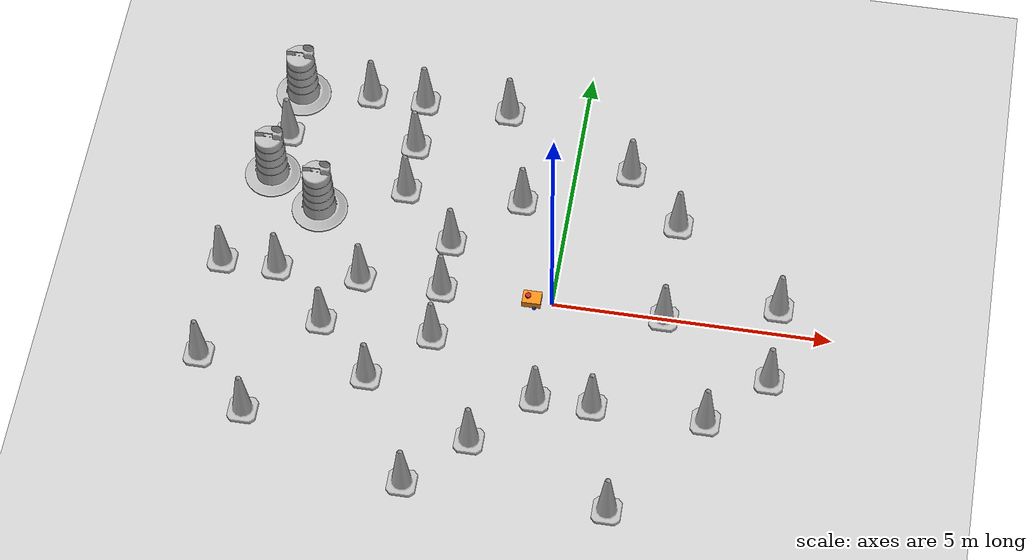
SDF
<sdf version="1.7">
 <world name="default">
  <light name="sun" type="directional">
   <pose>0 0 10 0 -0 0</pose>
   <diffuse>0.8 0.8 0.8 1</diffuse>
   <specular>0.2 0.2 0.2 1</specular>
   <attenuation>
    <range>1000</range>
    <constant>0.9</constant>
    <linear>0.01</linear>
    <quadratic>0.001</quadratic>
   </attenuation>
   <direction>-0.5 0.1 -0.9</direction>
   <spot><inner_angle>0</inner_angle><outer_angle>0</outer_angle><falloff>0</falloff></spot>
  </light>
  <model name="ground_plane">
   <static>1</static>
   <link name="link">
    <collision name="collision">
     <geometry><plane><normal>0 0 1</normal><size>100 100</size></plane></geometry>
     <surface>
      <contact><collide_bitmask>65535</collide_bitmask></contact>
      <friction><ode><mu>100</mu><mu2>50</mu2></ode></friction>
     </surface>
    </collision>
    <visual name="visual">
     <cast_shadows>0</cast_shadows>
     <geometry><plane><normal>0 0 1</normal><size>100 100</size></plane></geometry>
     <material>
      <script><uri>file://media/materials/scripts/gazebo.material</uri><name>Gazebo/Grey</name></script>
     </material>
    </visual>
   </link>
  </model>
  <gravity>0 0 -9.8</gravity>
  <magnetic_field>6e-06 2.3e-05 -4.2e-05</magnetic_field>
  <atmosphere type="adiabatic"/>
  <physics type="ode">
   <max_step_size>0.001</max_step_size>
   <real_time_factor>1</real_time_factor>
   <real_time_update_rate>1000</real_time_update_rate>
  </physics>
  <scene><ambient>0.4 0.4 0.4 1</ambient><background>0.7 0.7 0.7 1</background><shadows>1</shadows></scene>
  <audio><device>default</device></audio>
  <spherical_coordinates>
   <surface_model>EARTH_WGS84</surface_model>
   <latitude_deg>0</latitude_deg>
   <longitude_deg>0</longitude_deg>
   <elevation>0</elevation>
   <heading_deg>0</heading_deg>
  </spherical_coordinates>
  <model name="my_bot">
   <link name="base_link">
    <inertial>
     <pose>-0.071082 0 0.075033 0 -0 0</pose>
     <mass>0.61</mass>
     <inertia>
      <ixx>0.00482981</ixx>
      <ixy>0</ixy>
      <ixz>0.000516598</ixz>
      <iyy>0.00702444</iyy>
      <iyz>0</iyz>
      <izz>0.0081721</izz>
     </inertia>
    </inertial>
    <collision name="base_link_fixed_joint_lump__chassis_collision">
     <pose>-0.0585 0 0.059 0 -0 0</pose>
     <geometry><box><size>0.335 0.265 0.138</size></box></geometry>
    </collision>
    <collision name="base_link_fixed_joint_lump__caster_wheel_collision_1">
     <pose>-0.151 0 -0.023 0 -0 0</pose>
     <geometry><sphere><radius>0.01</radius></sphere></geometry>
     <surface><friction><ode><mu>0.001</mu><mu2>0.001</mu2></ode></friction></surface>
    </collision>
    <collision name="base_link_fixed_joint_lump__laser_frame_collision_2">
     <pose>-0.126 0 0.165 0 -0 0</pose>
     <geometry><cylinder><length>0.04</length><radius>0.05</radius></cylinder></geometry>
    </collision>
    <visual name="base_link_fixed_joint_lump__chassis_visual">
     <pose>-0.0585 0 0.059 0 -0 0</pose>
     <geometry><box><size>0.335 0.265 0.138</size></box></geometry>
     <material>
      <script><name>Gazebo/Orange</name><uri>file://media/materials/scripts/gazebo.material</uri></script>
     </material>
    </visual>
    <visual name="base_link_fixed_joint_lump__camera_link_visual_1">
     <pose>0.079 0 0.07 0 -0 0</pose>
     <geometry><box><size>0.01 0.03 0.03</size></box></geometry>
     <material>
      <script><name>Gazebo/Red</name><uri>file://media/materials/scripts/gazebo.material</uri></script>
     </material>
    </visual>
    <visual name="base_link_fixed_joint_lump__caster_wheel_visual_2">
     <pose>-0.151 0 -0.023 0 -0 0</pose>
     <geometry><sphere><radius>0.01</radius></sphere></geometry>
     <material>
      <script><name>Gazebo/White</name><uri>file://media/materials/scripts/gazebo.material</uri></script>
     </material>
    </visual>
    <visual name="base_link_fixed_joint_lump__laser_frame_visual_3">
     <pose>-0.126 0 0.165 0 -0 0</pose>
     <geometry><cylinder><length>0.04</length><radius>0.05</radius></cylinder></geometry>
     <material>
      <script><name>Gazebo/Red</name><uri>file://media/materials/scripts/gazebo.material</uri></script>
     </material>
    </visual>
    <sensor name="camera" type="camera">
     <visualize>1</visualize>
     <update_rate>10</update_rate>
     <camera>
      <horizontal_fov>1.089</horizontal_fov>
      <image><format>R8G8B8</format><width>640</width><height>480</height></image>
      <clip><near>0.05</near><far>8</far></clip>
     </camera>
     <plugin name="camera_controller" filename="libgazebo_ros_camera.so">
      <frame_name>camera_link_optical</frame_name>
     </plugin>
     <pose>0.079 0 0.07 0 -0 0</pose>
    </sensor>
    <sensor name="laser" type="ray">
     <visualize>1</visualize>
     <update_rate>10</update_rate>
     <ray>
      <scan>
       <horizontal>
        <samples>360</samples>
        <min_angle>-3.14</min_angle>
        <max_angle>3.14</max_angle>
        <resolution>1</resolution>
       </horizontal>
       <vertical><samples>1</samples><min_angle>0</min_angle><max_angle>0</max_angle></vertical>
      </scan>
      <range><min>0.3</min><max>12</max></range>
     </ray>
     <plugin name="laser_controller" filename="libgazebo_ros_ray_sensor.so">
      <ros><argument>~/out:=scan</argument></ros>
      <output_type>sensor_msgs/LaserScan</output_type>
      <frame_name>laser_frame</frame_name>
     </plugin>
     <pose>-0.126 0 0.165 0 -0 0</pose>
    </sensor>
   </link>
   <joint name="left_wheel_joint" type="revolute">
    <pose relative_to="base_link">0 0.1485 0 -1.5708 0 0</pose>
    <parent>base_link</parent>
    <child>left_wheel</child>
    <axis>
     <xyz>0 0 1</xyz>
     <limit><lower>-1e+16</lower><upper>1e+16</upper></limit>
     <dynamics><spring_reference>0</spring_reference><spring_stiffness>0</spring_stiffness></dynamics>
    </axis>
   </joint>
   <link name="left_wheel">
    <pose relative_to="left_wheel_joint">0 0 0 0 -0 0</pose>
    <inertial>
     <mass>0.05</mass>
     <inertia>
      <ixx>1.64292e-05</ixx>
      <ixy>0</ixy>
      <ixz>0</ixz>
      <iyy>1.64292e-05</iyy>
      <iyz>0</iyz>
      <izz>2.7225e-05</izz>
     </inertia>
    </inertial>
    <collision name="left_wheel_collision">
     <geometry><sphere><radius>0.033</radius></sphere></geometry>
    </collision>
    <visual name="left_wheel_visual">
     <geometry><cylinder><length>0.026</length><radius>0.033</radius></cylinder></geometry>
     <material>
      <script><name>Gazebo/Blue</name><uri>file://media/materials/scripts/gazebo.material</uri></script>
     </material>
    </visual>
   </link>
   <joint name="right_wheel_joint" type="revolute">
    <pose relative_to="base_link">0 -0.1485 0 1.5708 -0 0</pose>
    <parent>base_link</parent>
    <child>right_wheel</child>
    <axis>
     <xyz>0 0 -1</xyz>
     <limit><lower>-1e+16</lower><upper>1e+16</upper></limit>
     <dynamics><spring_reference>0</spring_reference><spring_stiffness>0</spring_stiffness></dynamics>
    </axis>
   </joint>
   <link name="right_wheel">
    <pose relative_to="right_wheel_joint">0 0 0 0 -0 0</pose>
    <inertial>
     <mass>0.05</mass>
     <inertia>
      <ixx>1.64292e-05</ixx>
      <ixy>0</ixy>
      <ixz>0</ixz>
      <iyy>1.64292e-05</iyy>
      <iyz>0</iyz>
      <izz>2.7225e-05</izz>
     </inertia>
    </inertial>
    <collision name="right_wheel_collision">
     <geometry><sphere><radius>0.033</radius></sphere></geometry>
    </collision>
    <visual name="right_wheel_visual">
     <geometry><cylinder><length>0.026</length><radius>0.033</radius></cylinder></geometry>
     <material>
      <script><name>Gazebo/Blue</name><uri>file://media/materials/scripts/gazebo.material</uri></script>
     </material>
    </visual>
   </link>
   <static>0</static>
   <plugin name="diff_drive" filename="libgazebo_ros_diff_drive.so">
    <left_joint>left_wheel_joint</left_joint>
    <right_joint>right_wheel_joint</right_joint>
    <wheel_separation>0.35</wheel_separation>
    <wheel_diameter>0.1</wheel_diameter>
    <max_wheel_torque>200</max_wheel_torque>
    <max_wheel_acceleration>10.0</max_wheel_acceleration>
    <odometry_frame>odom</odometry_frame>
    <robot_base_frame>base_link</robot_base_frame>
    <publish_odom>1</publish_odom>
    <publish_odom_tf>1</publish_odom_tf>
    <publish_wheel_tf>1</publish_wheel_tf>
   </plugin>
   <pose>-0.310032 0.000981 0.033 -0 -3.2e-05 0.002878</pose>
  </model>
  <model name="Construction Cone">
   <link name="link">
    <collision name="collision">
     <geometry>
      <mesh><scale>10 10 10</scale><uri>model://construction_cone/meshes/construction_cone.dae</uri></mesh>
     </geometry>
    </collision>
    <visual name="visual">
     <geometry>
      <mesh><scale>10 10 10</scale><uri>model://construction_cone/meshes/construction_cone.dae</uri></mesh>
     </geometry>
    </visual>
    <inertial>
     <inertia><ixx>1</ixx><ixy>0</ixy><ixz>0</ixz><iyy>1</iyy><iyz>0</iyz><izz>1</izz></inertia>
     <mass>1</mass>
    </inertial>
   </link>
   <pose>-5.35657 2.91978 -0 0 -0 0</pose>
  </model>
  <model name="Construction Barrel">
   <link name="link">
    <inertial>
     <pose>0 0 0.4 0 -0 0</pose>
     <mass>500</mass>
     <inertia><ixx>51.2096</ixx><iyy>51.2096</iyy><izz>25</izz><ixy>0</ixy><ixz>0</ixz><iyz>0</iyz></inertia>
    </inertial>
    <collision name="collision">
     <geometry><mesh><uri>model://construction_barrel/meshes/construction_barrel.dae</uri></mesh></geometry>
    </collision>
    <visual name="visual">
     <geometry><mesh><uri>model://construction_barrel/meshes/construction_barrel.dae</uri></mesh></geometry>
    </visual>
   </link>
   <pose>-5.28247 3.8712 -0 0 0 -2.9e-05</pose>
  </model>
  <model name="Construction Cone_clone">
   <link name="link">
    <collision name="collision">
     <geometry>
      <mesh><scale>10 10 10</scale><uri>model://construction_cone/meshes/construction_cone.dae</uri></mesh>
     </geometry>
    </collision>
    <visual name="visual">
     <geometry>
      <mesh><scale>10 10 10</scale><uri>model://construction_cone/meshes/construction_cone.dae</uri></mesh>
     </geometry>
    </visual>
    <inertial>
     <inertia><ixx>1</ixx><ixy>0</ixy><ixz>0</ixz><iyy>1</iyy><iyz>0</iyz><izz>1</izz></inertia>
     <mass>1</mass>
    </inertial>
   </link>
   <pose>-4 4 -1e-06 2e-06 2e-06 0</pose>
  </model>
  <model name="Construction Cone_clone_0">
   <link name="link">
    <collision name="collision">
     <geometry>
      <mesh><scale>10 10 10</scale><uri>model://construction_cone/meshes/construction_cone.dae</uri></mesh>
     </geometry>
    </collision>
    <visual name="visual">
     <geometry>
      <mesh><scale>10 10 10</scale><uri>model://construction_cone/meshes/construction_cone.dae</uri></mesh>
     </geometry>
    </visual>
    <inertial>
     <inertia><ixx>1</ixx><ixy>0</ixy><ixz>0</ixz><iyy>1</iyy><iyz>0</iyz><izz>1</izz></inertia>
     <mass>1</mass>
    </inertial>
   </link>
   <pose>-3 4 -0 0 -0 0</pose>
  </model>
  <model name="Construction Cone_clone_1">
   <link name="link">
    <collision name="collision">
     <geometry>
      <mesh><scale>10 10 10</scale><uri>model://construction_cone/meshes/construction_cone.dae</uri></mesh>
     </geometry>
    </collision>
    <visual name="visual">
     <geometry>
      <mesh><scale>10 10 10</scale><uri>model://construction_cone/meshes/construction_cone.dae</uri></mesh>
     </geometry>
    </visual>
    <inertial>
     <inertia><ixx>1</ixx><ixy>0</ixy><ixz>0</ixz><iyy>1</iyy><iyz>0</iyz><izz>1</izz></inertia>
     <mass>1</mass>
    </inertial>
   </link>
   <pose>-3 3 -0 -0 -0 -0</pose>
  </model>
  <model name="Construction Cone_clone_2">
   <link name="link">
    <collision name="collision">
     <geometry>
      <mesh><scale>10 10 10</scale><uri>model://construction_cone/meshes/construction_cone.dae</uri></mesh>
     </geometry>
    </collision>
    <visual name="visual">
     <geometry>
      <mesh><scale>10 10 10</scale><uri>model://construction_cone/meshes/construction_cone.dae</uri></mesh>
     </geometry>
    </visual>
    <inertial>
     <inertia><ixx>1</ixx><ixy>0</ixy><ixz>0</ixz><iyy>1</iyy><iyz>0</iyz><izz>1</izz></inertia>
     <mass>1</mass>
    </inertial>
   </link>
   <pose>-3 2 -1e-05 0 -0 0</pose>
  </model>
  <model name="Construction Barrel_clone">
   <link name="link">
    <inertial>
     <pose>0 0 0.4 0 -0 0</pose>
     <mass>500</mass>
     <inertia><ixx>51.2096</ixx><iyy>51.2096</iyy><izz>25</izz><ixy>0</ixy><ixz>0</ixz><iyz>0</iyz></inertia>
    </inertial>
    <collision name="collision">
     <geometry><mesh><uri>model://construction_barrel/meshes/construction_barrel.dae</uri></mesh></geometry>
    </collision>
    <visual name="visual">
     <geometry><mesh><uri>model://construction_barrel/meshes/construction_barrel.dae</uri></mesh></geometry>
    </visual>
   </link>
   <pose>-5.48714 1.99995 -1e-06 1e-06 -9e-06 -3.3e-05</pose>
  </model>
  <model name="Construction Barrel_clone_0">
   <link name="link">
    <inertial>
     <pose>0 0 0.4 0 -0 0</pose>
     <mass>500</mass>
     <inertia><ixx>51.2096</ixx><iyy>51.2096</iyy><izz>25</izz><ixy>0</ixy><ixz>0</ixz><iyz>0</iyz></inertia>
    </inertial>
    <collision name="collision">
     <geometry><mesh><uri>model://construction_barrel/meshes/construction_barrel.dae</uri></mesh></geometry>
    </collision>
    <visual name="visual">
     <geometry><mesh><uri>model://construction_barrel/meshes/construction_barrel.dae</uri></mesh></geometry>
    </visual>
   </link>
   <pose>-4.49303 1.38178 -1e-06 1e-06 -9e-06 -3.3e-05</pose>
  </model>
  <model name="Construction Cone_clone_2_clone">
   <link name="link">
    <collision name="collision">
     <geometry>
      <mesh><scale>10 10 10</scale><uri>model://construction_cone/meshes/construction_cone.dae</uri></mesh>
     </geometry>
    </collision>
    <visual name="visual">
     <geometry>
      <mesh><scale>10 10 10</scale><uri>model://construction_cone/meshes/construction_cone.dae</uri></mesh>
     </geometry>
    </visual>
    <inertial>
     <inertia><ixx>1</ixx><ixy>0</ixy><ixz>0</ixz><iyy>1</iyy><iyz>0</iyz><izz>1</izz></inertia>
     <mass>1</mass>
    </inertial>
   </link>
   <pose>-0.867716 2.07407 -0 0 -0 0</pose>
  </model>
  <model name="Construction Cone_clone_2_clone_0">
   <link name="link">
    <collision name="collision">
     <geometry>
      <mesh><scale>10 10 10</scale><uri>model://construction_cone/meshes/construction_cone.dae</uri></mesh>
     </geometry>
    </collision>
    <visual name="visual">
     <geometry>
      <mesh><scale>10 10 10</scale><uri>model://construction_cone/meshes/construction_cone.dae</uri></mesh>
     </geometry>
    </visual>
    <inertial>
     <inertia><ixx>1</ixx><ixy>0</ixy><ixz>0</ixz><iyy>1</iyy><iyz>0</iyz><izz>1</izz></inertia>
     <mass>1</mass>
    </inertial>
   </link>
   <pose>2 2 -0 0 -0 0</pose>
  </model>
  <model name="Construction Cone_clone_2_clone_1">
   <link name="link">
    <collision name="collision">
     <geometry>
      <mesh><scale>10 10 10</scale><uri>model://construction_cone/meshes/construction_cone.dae</uri></mesh>
     </geometry>
    </collision>
    <visual name="visual">
     <geometry>
      <mesh><scale>10 10 10</scale><uri>model://construction_cone/meshes/construction_cone.dae</uri></mesh>
     </geometry>
    </visual>
    <inertial>
     <inertia><ixx>1</ixx><ixy>0</ixy><ixz>0</ixz><iyy>1</iyy><iyz>0</iyz><izz>1</izz></inertia>
     <mass>1</mass>
    </inertial>
   </link>
   <pose>1 3 -8e-06 1e-06 -0 0</pose>
  </model>
  <model name="Construction Cone_clone_2_clone_2">
   <link name="link">
    <collision name="collision">
     <geometry>
      <mesh><scale>10 10 10</scale><uri>model://construction_cone/meshes/construction_cone.dae</uri></mesh>
     </geometry>
    </collision>
    <visual name="visual">
     <geometry>
      <mesh><scale>10 10 10</scale><uri>model://construction_cone/meshes/construction_cone.dae</uri></mesh>
     </geometry>
    </visual>
    <inertial>
     <inertia><ixx>1</ixx><ixy>0</ixy><ixz>0</ixz><iyy>1</iyy><iyz>0</iyz><izz>1</izz></inertia>
     <mass>1</mass>
    </inertial>
   </link>
   <pose>-5 -3 -8e-06 -5e-06 -0 -0</pose>
  </model>
  <model name="Construction Cone_clone_2_clone_3">
   <link name="link">
    <collision name="collision">
     <geometry>
      <mesh><scale>10 10 10</scale><uri>model://construction_cone/meshes/construction_cone.dae</uri></mesh>
     </geometry>
    </collision>
    <visual name="visual">
     <geometry>
      <mesh><scale>10 10 10</scale><uri>model://construction_cone/meshes/construction_cone.dae</uri></mesh>
     </geometry>
    </visual>
    <inertial>
     <inertia><ixx>1</ixx><ixy>0</ixy><ixz>0</ixz><iyy>1</iyy><iyz>0</iyz><izz>1</izz></inertia>
     <mass>1</mass>
    </inertial>
   </link>
   <pose>-2 -4 -3e-06 -3e-06 -1e-06 -0</pose>
  </model>
  <model name="Construction Cone_clone_2_clone_4">
   <link name="link">
    <collision name="collision">
     <geometry>
      <mesh><scale>10 10 10</scale><uri>model://construction_cone/meshes/construction_cone.dae</uri></mesh>
     </geometry>
    </collision>
    <visual name="visual">
     <geometry>
      <mesh><scale>10 10 10</scale><uri>model://construction_cone/meshes/construction_cone.dae</uri></mesh>
     </geometry>
    </visual>
    <inertial>
     <inertia><ixx>1</ixx><ixy>0</ixy><ixz>0</ixz><iyy>1</iyy><iyz>0</iyz><izz>1</izz></inertia>
     <mass>1</mass>
    </inertial>
   </link>
   <pose>-3 -2 -5e-06 -4e-06 1e-06 0</pose>
  </model>
  <model name="Construction Cone_clone_2_clone_5">
   <link name="link">
    <collision name="collision">
     <geometry>
      <mesh><scale>10 10 10</scale><uri>model://construction_cone/meshes/construction_cone.dae</uri></mesh>
     </geometry>
    </collision>
    <visual name="visual">
     <geometry>
      <mesh><scale>10 10 10</scale><uri>model://construction_cone/meshes/construction_cone.dae</uri></mesh>
     </geometry>
    </visual>
    <inertial>
     <inertia><ixx>1</ixx><ixy>0</ixy><ixz>0</ixz><iyy>1</iyy><iyz>0</iyz><izz>1</izz></inertia>
     <mass>1</mass>
    </inertial>
   </link>
   <pose>-4 -1 -0 0 -0 0</pose>
  </model>
  <model name="Construction Cone_clone_2_clone_6">
   <link name="link">
    <collision name="collision">
     <geometry>
      <mesh><scale>10 10 10</scale><uri>model://construction_cone/meshes/construction_cone.dae</uri></mesh>
     </geometry>
    </collision>
    <visual name="visual">
     <geometry>
      <mesh><scale>10 10 10</scale><uri>model://construction_cone/meshes/construction_cone.dae</uri></mesh>
     </geometry>
    </visual>
    <inertial>
     <inertia><ixx>1</ixx><ixy>0</ixy><ixz>0</ixz><iyy>1</iyy><iyz>0</iyz><izz>1</izz></inertia>
     <mass>1</mass>
    </inertial>
   </link>
   <pose>-5 0 -0 0 -0 0</pose>
  </model>
  <model name="Construction Cone_clone_2_clone_7">
   <link name="link">
    <collision name="collision">
     <geometry>
      <mesh><scale>10 10 10</scale><uri>model://construction_cone/meshes/construction_cone.dae</uri></mesh>
     </geometry>
    </collision>
    <visual name="visual">
     <geometry>
      <mesh><scale>10 10 10</scale><uri>model://construction_cone/meshes/construction_cone.dae</uri></mesh>
     </geometry>
    </visual>
    <inertial>
     <inertia><ixx>1</ixx><ixy>0</ixy><ixz>0</ixz><iyy>1</iyy><iyz>0</iyz><izz>1</izz></inertia>
     <mass>1</mass>
    </inertial>
   </link>
   <pose>-3.4809 0.004595 0 -0 -0 -0.099462</pose>
  </model>
  <model name="Construction Cone_clone_2_clone_8">
   <link name="link">
    <collision name="collision">
     <geometry>
      <mesh><scale>10 10 10</scale><uri>model://construction_cone/meshes/construction_cone.dae</uri></mesh>
     </geometry>
    </collision>
    <visual name="visual">
     <geometry>
      <mesh><scale>10 10 10</scale><uri>model://construction_cone/meshes/construction_cone.dae</uri></mesh>
     </geometry>
    </visual>
    <inertial>
     <inertia><ixx>1</ixx><ixy>0</ixy><ixz>0</ixz><iyy>1</iyy><iyz>0</iyz><izz>1</izz></inertia>
     <mass>1</mass>
    </inertial>
   </link>
   <pose>-1 -3 -0 0 -1e-06 0</pose>
  </model>
  <model name="Construction Cone_clone_2_clone_9">
   <link name="link">
    <collision name="collision">
     <geometry>
      <mesh><scale>10 10 10</scale><uri>model://construction_cone/meshes/construction_cone.dae</uri></mesh>
     </geometry>
    </collision>
    <visual name="visual">
     <geometry>
      <mesh><scale>10 10 10</scale><uri>model://construction_cone/meshes/construction_cone.dae</uri></mesh>
     </geometry>
    </visual>
    <inertial>
     <inertia><ixx>1</ixx><ixy>0</ixy><ixz>0</ixz><iyy>1</iyy><iyz>0</iyz><izz>1</izz></inertia>
     <mass>1</mass>
    </inertial>
   </link>
   <pose>1.55701 -4 -0 0 -0 0</pose>
  </model>
  <model name="Construction Cone_clone_2_clone_10">
   <link name="link">
    <collision name="collision">
     <geometry>
      <mesh><scale>10 10 10</scale><uri>model://construction_cone/meshes/construction_cone.dae</uri></mesh>
     </geometry>
    </collision>
    <visual name="visual">
     <geometry>
      <mesh><scale>10 10 10</scale><uri>model://construction_cone/meshes/construction_cone.dae</uri></mesh>
     </geometry>
    </visual>
    <inertial>
     <inertia><ixx>1</ixx><ixy>0</ixy><ixz>0</ixz><iyy>1</iyy><iyz>0</iyz><izz>1</izz></inertia>
     <mass>1</mass>
    </inertial>
   </link>
   <pose>0 -2 -9e-06 1e-06 -1e-06 0</pose>
  </model>
  <model name="Construction Cone_clone_2_clone_11">
   <link name="link">
    <collision name="collision">
     <geometry>
      <mesh><scale>10 10 10</scale><uri>model://construction_cone/meshes/construction_cone.dae</uri></mesh>
     </geometry>
    </collision>
    <visual name="visual">
     <geometry>
      <mesh><scale>10 10 10</scale><uri>model://construction_cone/meshes/construction_cone.dae</uri></mesh>
     </geometry>
    </visual>
    <inertial>
     <inertia><ixx>1</ixx><ixy>0</ixy><ixz>0</ixz><iyy>1</iyy><iyz>0</iyz><izz>1</izz></inertia>
     <mass>1</mass>
    </inertial>
   </link>
   <pose>3 -2 -6e-06 -4e-06 0 0</pose>
  </model>
  <model name="Construction Cone_clone_2_clone_12">
   <link name="link">
    <collision name="collision">
     <geometry>
      <mesh><scale>10 10 10</scale><uri>model://construction_cone/meshes/construction_cone.dae</uri></mesh>
     </geometry>
    </collision>
    <visual name="visual">
     <geometry>
      <mesh><scale>10 10 10</scale><uri>model://construction_cone/meshes/construction_cone.dae</uri></mesh>
     </geometry>
    </visual>
    <inertial>
     <inertia><ixx>1</ixx><ixy>0</ixy><ixz>0</ixz><iyy>1</iyy><iyz>0</iyz><izz>1</izz></inertia>
     <mass>1</mass>
    </inertial>
   </link>
   <pose>4 -1 -6e-06 -4e-06 0 0</pose>
  </model>
  <model name="Construction Cone_clone_2_clone_13">
   <link name="link">
    <collision name="collision">
     <geometry>
      <mesh><scale>10 10 10</scale><uri>model://construction_cone/meshes/construction_cone.dae</uri></mesh>
     </geometry>
    </collision>
    <visual name="visual">
     <geometry>
      <mesh><scale>10 10 10</scale><uri>model://construction_cone/meshes/construction_cone.dae</uri></mesh>
     </geometry>
    </visual>
    <inertial>
     <inertia><ixx>1</ixx><ixy>0</ixy><ixz>0</ixz><iyy>1</iyy><iyz>0</iyz><izz>1</izz></inertia>
     <mass>1</mass>
    </inertial>
   </link>
   <pose>4 0.502949 -0 0 -0 0</pose>
  </model>
  <model name="Construction Cone_clone_2_clone_14">
   <link name="link">
    <collision name="collision">
     <geometry>
      <mesh><scale>10 10 10</scale><uri>model://construction_cone/meshes/construction_cone.dae</uri></mesh>
     </geometry>
    </collision>
    <visual name="visual">
     <geometry>
      <mesh><scale>10 10 10</scale><uri>model://construction_cone/meshes/construction_cone.dae</uri></mesh>
     </geometry>
    </visual>
    <inertial>
     <inertia><ixx>1</ixx><ixy>0</ixy><ixz>0</ixz><iyy>1</iyy><iyz>0</iyz><izz>1</izz></inertia>
     <mass>1</mass>
    </inertial>
   </link>
   <pose>2 0 -0 0 -0 0</pose>
  </model>
  <model name="Construction Cone_clone_2_clone_15">
   <link name="link">
    <collision name="collision">
     <geometry>
      <mesh><scale>10 10 10</scale><uri>model://construction_cone/meshes/construction_cone.dae</uri></mesh>
     </geometry>
    </collision>
    <visual name="visual">
     <geometry>
      <mesh><scale>10 10 10</scale><uri>model://construction_cone/meshes/construction_cone.dae</uri></mesh>
     </geometry>
    </visual>
    <inertial>
     <inertia><ixx>1</ixx><ixy>0</ixy><ixz>0</ixz><iyy>1</iyy><iyz>0</iyz><izz>1</izz></inertia>
     <mass>1</mass>
    </inertial>
   </link>
   <pose>1 -2 -0 0 -0 0</pose>
  </model>
  <model name="Construction Cone_clone_2_clone_16">
   <link name="link">
    <collision name="collision">
     <geometry>
      <mesh><scale>10 10 10</scale><uri>model://construction_cone/meshes/construction_cone.dae</uri></mesh>
     </geometry>
    </collision>
    <visual name="visual">
     <geometry>
      <mesh><scale>10 10 10</scale><uri>model://construction_cone/meshes/construction_cone.dae</uri></mesh>
     </geometry>
    </visual>
    <inertial>
     <inertia><ixx>1</ixx><ixy>0</ixy><ixz>0</ixz><iyy>1</iyy><iyz>0</iyz><izz>1</izz></inertia>
     <mass>1</mass>
    </inertial>
   </link>
   <pose>-2 -1 -0 0 -0 0</pose>
  </model>
  <model name="Construction Cone_clone_2_clone_17">
   <link name="link">
    <collision name="collision">
     <geometry>
      <mesh><scale>10 10 10</scale><uri>model://construction_cone/meshes/construction_cone.dae</uri></mesh>
     </geometry>
    </collision>
    <visual name="visual">
     <geometry>
      <mesh><scale>10 10 10</scale><uri>model://construction_cone/meshes/construction_cone.dae</uri></mesh>
     </geometry>
    </visual>
    <inertial>
     <inertia><ixx>1</ixx><ixy>0</ixy><ixz>0</ixz><iyy>1</iyy><iyz>0</iyz><izz>1</izz></inertia>
     <mass>1</mass>
    </inertial>
   </link>
   <pose>-2 1 -8e-06 1e-06 -0 0</pose>
  </model>
  <model name="Construction Cone_clone_2_clone_18">
   <link name="link">
    <collision name="collision">
     <geometry>
      <mesh><scale>10 10 10</scale><uri>model://construction_cone/meshes/construction_cone.dae</uri></mesh>
     </geometry>
    </collision>
    <visual name="visual">
     <geometry>
      <mesh><scale>10 10 10</scale><uri>model://construction_cone/meshes/construction_cone.dae</uri></mesh>
     </geometry>
    </visual>
    <inertial>
     <inertia><ixx>1</ixx><ixy>0</ixy><ixz>0</ixz><iyy>1</iyy><iyz>0</iyz><izz>1</izz></inertia>
     <mass>1</mass>
    </inertial>
   </link>
   <pose>-2 0 -5e-06 -4e-06 1e-06 0</pose>
  </model>
  <model name="Construction Cone_clone_2_clone_19">
   <link name="link">
    <collision name="collision">
     <geometry>
      <mesh><scale>10 10 10</scale><uri>model://construction_cone/meshes/construction_cone.dae</uri></mesh>
     </geometry>
    </collision>
    <visual name="visual">
     <geometry>
      <mesh><scale>10 10 10</scale><uri>model://construction_cone/meshes/construction_cone.dae</uri></mesh>
     </geometry>
    </visual>
    <inertial>
     <inertia><ixx>1</ixx><ixy>0</ixy><ixz>0</ixz><iyy>1</iyy><iyz>0</iyz><izz>1</izz></inertia>
     <mass>1</mass>
    </inertial>
   </link>
   <pose>-6 -2 -0 0 -0 0</pose>
  </model>
  <model name="Construction Cone_clone_2_clone_20">
   <link name="link">
    <collision name="collision">
     <geometry>
      <mesh><scale>10 10 10</scale><uri>model://construction_cone/meshes/construction_cone.dae</uri></mesh>
     </geometry>
    </collision>
    <visual name="visual">
     <geometry>
      <mesh><scale>10 10 10</scale><uri>model://construction_cone/meshes/construction_cone.dae</uri></mesh>
     </geometry>
    </visual>
    <inertial>
     <inertia><ixx>1</ixx><ixy>0</ixy><ixz>0</ixz><iyy>1</iyy><iyz>0</iyz><izz>1</izz></inertia>
     <mass>1</mass>
    </inertial>
   </link>
   <pose>-6 0 -0 0 -0 0</pose>
  </model>
  <model name="Construction Cone_clone_2_clone_21">
   <link name="link">
    <collision name="collision">
     <geometry>
      <mesh><scale>10 10 10</scale><uri>model://construction_cone/meshes/construction_cone.dae</uri></mesh>
     </geometry>
    </collision>
    <visual name="visual">
     <geometry>
      <mesh><scale>10 10 10</scale><uri>model://construction_cone/meshes/construction_cone.dae</uri></mesh>
     </geometry>
    </visual>
    <inertial>
     <inertia><ixx>1</ixx><ixy>0</ixy><ixz>0</ixz><iyy>1</iyy><iyz>0</iyz><izz>1</izz></inertia>
     <mass>1</mass>
    </inertial>
   </link>
   <pose>-1.41323 4 -0 0 -0 0</pose>
  </model>
 </world>
</sdf>
